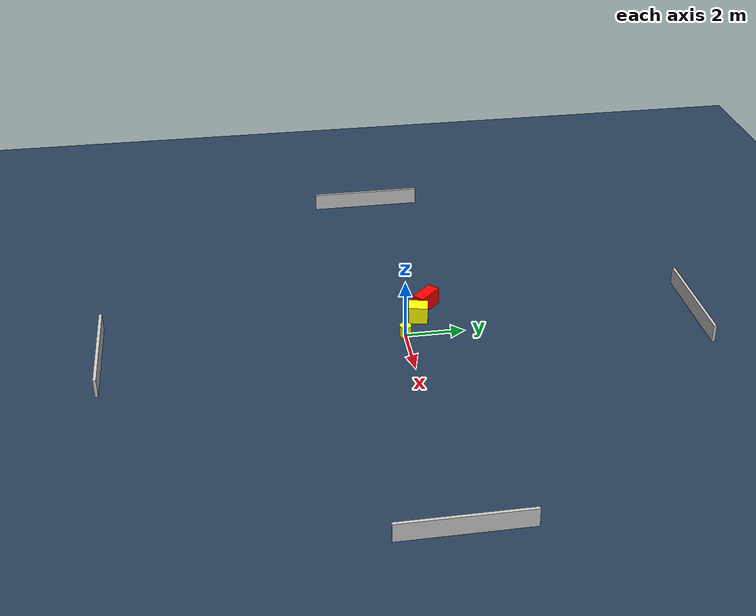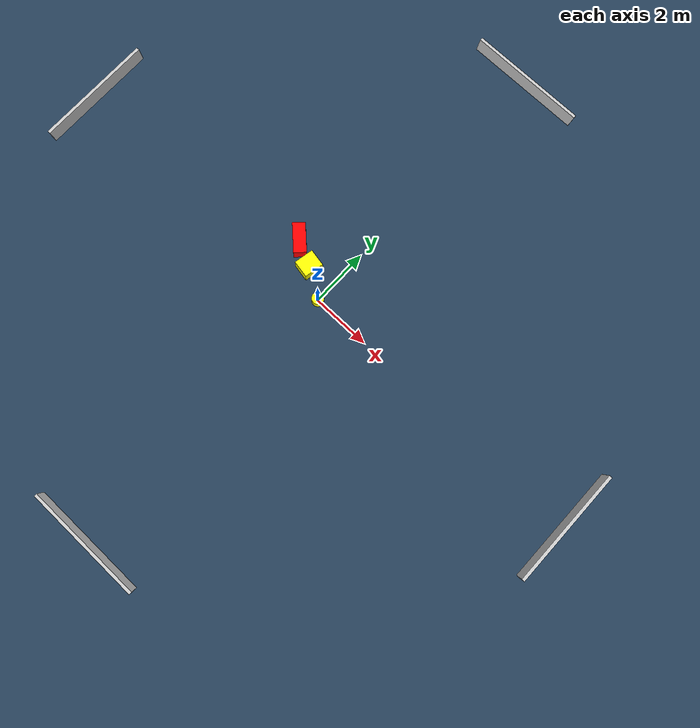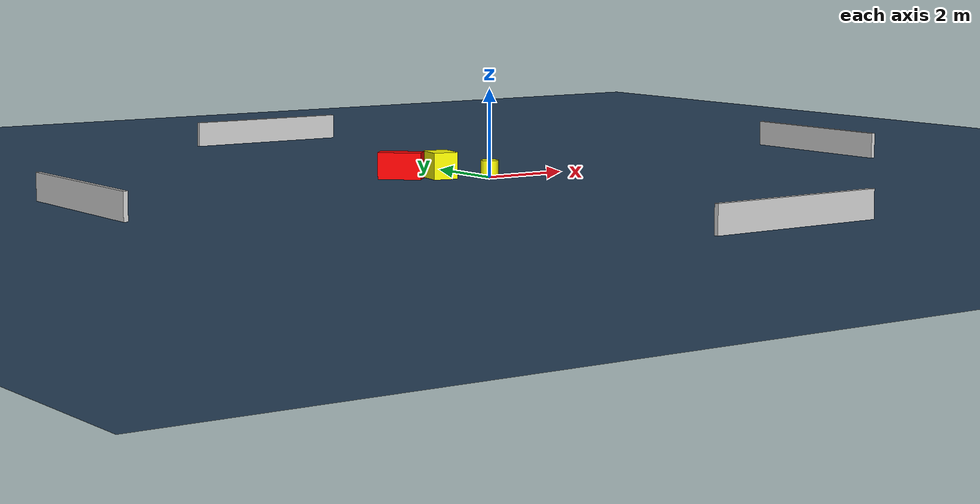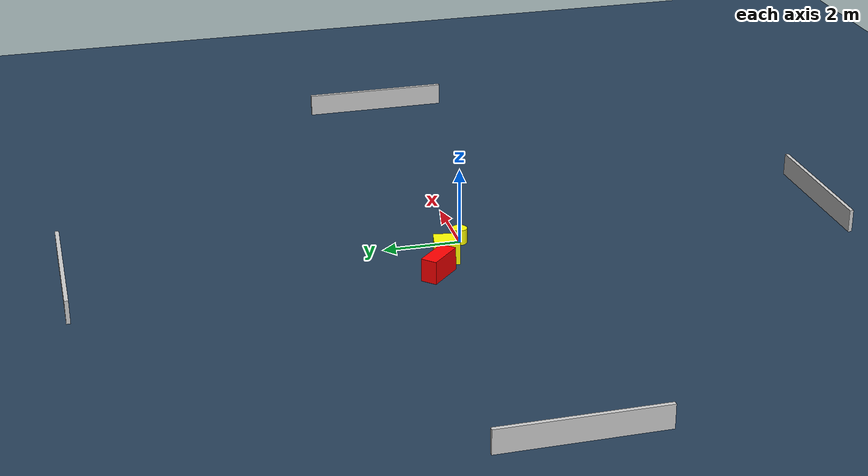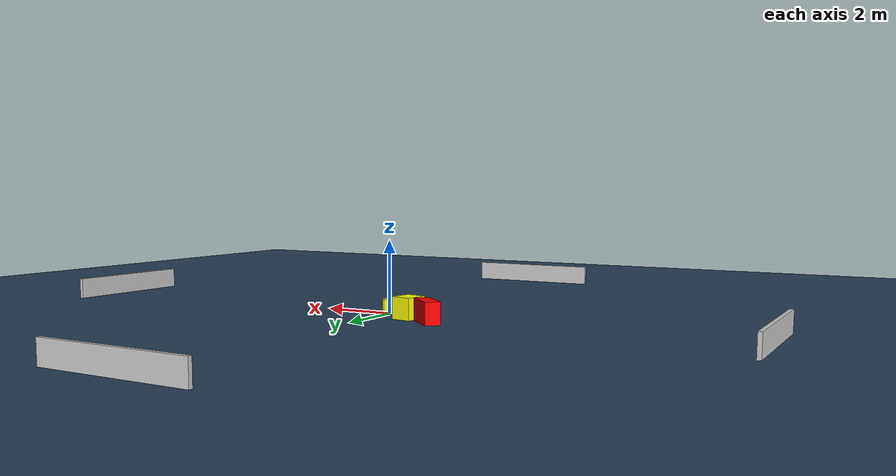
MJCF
<?xml version="1.0" ?>
<mujoco model="generated_environment">
  <option timestep="0.01" integrator="RK4" cone="elliptic"/>
  <default>
    <geom density="1"/>
  </default>
  <asset>
    <texture builtin="gradient" height="3072" name="skybox" rgb1="0.3 0.5 0.7" rgb2="0 0 0" type="skybox" width="512"/>
    <texture builtin="checker" height="300" name="groundplane" rgb1="0.2 0.3 0.4" rgb2="0.1 0.2 0.3" type="2d" width="300"/>
    <material name="groundplane" reflectance="0.2" texrepeat="5 5" texture="groundplane"/>
  </asset>
  <worldbody>
    <light dir="0 0 -1" directional="true" pos="0 0 1.5"/>
    <geom condim="3" friction="0.5 0.005 0.001" material="groundplane" name="floor" pos="0 0 0" size="0 0 0.05" type="plane"/>
    <body name="walls">
      <geom name="wall_1" condim="4" pos="-10.0 0.0 0.3" rgba="0.800000011920929 0.800000011920929 0.800000011920929 1.0" size="0.05 2.0 0.3" type="box"/>
      <geom name="wall_2" condim="4" pos="10.0 0.0 0.3" rgba="0.800000011920929 0.800000011920929 0.800000011920929 1.0" size="0.05 2.0 0.3" type="box"/>
      <geom name="wall_3" condim="4" pos="0.0 -10.0 0.3" rgba="0.800000011920929 0.800000011920929 0.800000011920929 1.0" size="2.0 0.05 0.3" type="box"/>
      <geom name="wall_4" condim="4" pos="0.0 10.0 0.3" rgba="0.800000011920929 0.800000011920929 0.800000011920929 1.0" size="2.0 0.05 0.3" type="box"/>
    </body>
    <body name="robot">
      <joint name="joint_x" type="slide" pos="0 0 0" axis="1 0 0"/>
      <joint name="joint_y" type="slide" pos="0 0 0" axis="0 1 0"/>
      <geom name="robot" type="cylinder" pos="0.0 0.0 0.2" size="0.2 0.2 0.0" mass="5.0" friction="1.0 0.005 0.0001" condim="4" rgba="1.0 1.0 0.0 1.0"/>
    </body>
    <body name="obstacle_1_movable">
      <geom name="obstacle_1_movable" condim="4" pos="-0.938521755880443 0.5868267908477014 0.3" euler="0 0 169.14526454642223" friction="0.0 0.005 0.001" rgba="1.0 1.0 0.0 1.0" size="0.2834654977712886 0.3253358714436171 0.3" type="box" mass="0.1"/>
      <joint type="free"/>
    </body>
    <body name="obstacle_2_static">
      <geom name="obstacle_2_static" condim="4" pos="-1.7269284153739928 0.9905857261596897 0.3" euler="0 0 135.80576758234696" friction="0.0 0.005 0.001" rgba="1.0 0.0 0.0 1.0" size="0.48846811248661615 0.21044571794200767 0.3" type="box"/>
    </body>
  </worldbody>
  <actuator>
    <motor name="actuator_x" joint="joint_x" gear="1" ctrlrange="-1 1"/>
    <motor name="actuator_y" joint="joint_y" gear="1" ctrlrange="-1 1"/>
  </actuator>
</mujoco>
